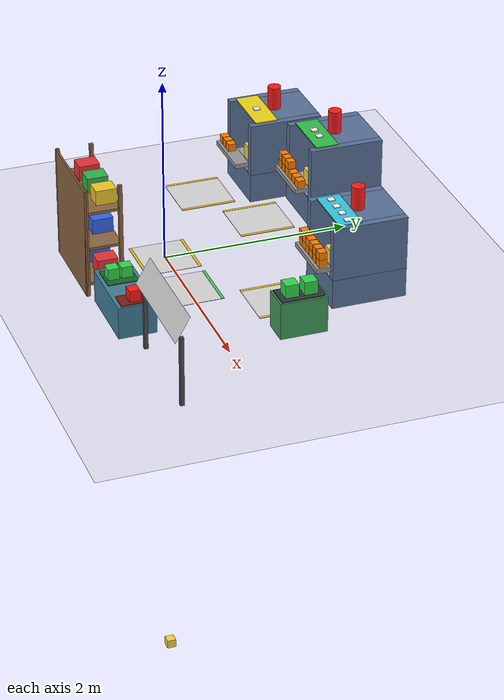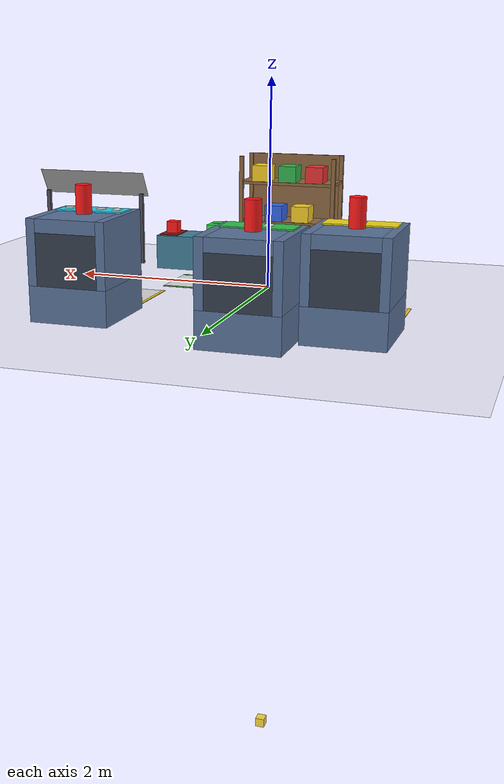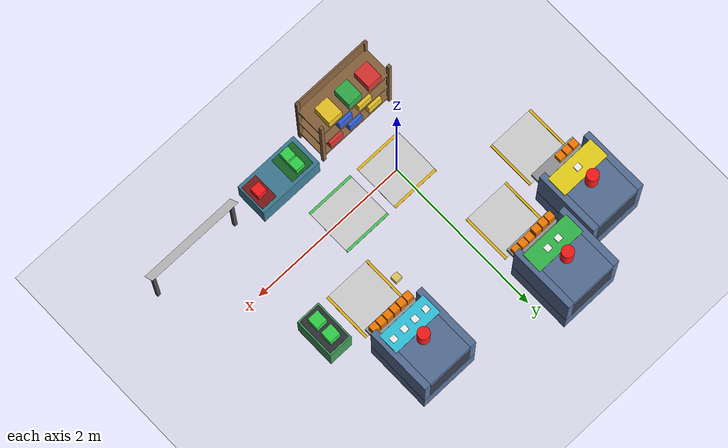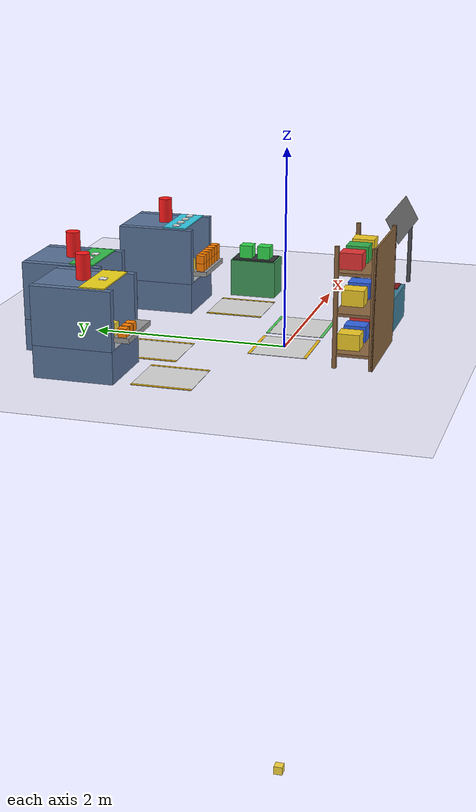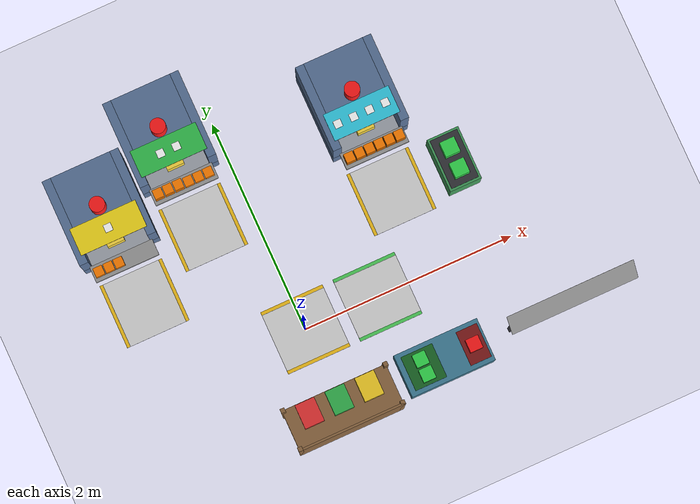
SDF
<sdf version="1.6">
 <world name="factory">
  <include><uri>model://sun</uri></include>
  <include><uri>model://ground_plane</uri></include>
  <model name="store">
   <static>true</static>
   <pose>0.0 0.0 0 0 0 3.141593</pose>
   <link name="base">
    <visual name="pad">
     <pose>0 0 0.002 0 0 0</pose>
     <geometry><box><size>0.6 0.6 0.004</size></box></geometry>
     <material>
      <ambient>0.85 0.85 0.85 1</ambient>
      <diffuse>0.85 0.85 0.85 1</diffuse>
      <specular>0.1 0.1 0.1 1</specular>
     </material>
    </visual>
    <visual name="pad_edge_l">
     <pose>0 0.285 0.003 0 0 0</pose>
     <geometry><box><size>0.6 0.03 0.006</size></box></geometry>
     <material>
      <ambient>0.95 0.75 0.1 1</ambient>
      <diffuse>0.95 0.75 0.1 1</diffuse>
      <specular>0.1 0.1 0.1 1</specular>
     </material>
    </visual>
    <visual name="pad_edge_r">
     <pose>0 -0.285 0.003 0 0 0</pose>
     <geometry><box><size>0.6 0.03 0.006</size></box></geometry>
     <material>
      <ambient>0.95 0.75 0.1 1</ambient>
      <diffuse>0.95 0.75 0.1 1</diffuse>
      <specular>0.1 0.1 0.1 1</specular>
     </material>
    </visual>
    <visual name="post0">
     <pose>-0.48 0.62 0.6 0 0 0</pose>
     <geometry><box><size>0.04 0.04 1.2</size></box></geometry>
     <material>
      <ambient>0.55 0.4 0.25 1</ambient>
      <diffuse>0.55 0.4 0.25 1</diffuse>
      <specular>0.1 0.1 0.1 1</specular>
     </material>
    </visual>
    <collision name="post0">
     <pose>-0.48 0.62 0.6 0 0 0</pose>
     <geometry><box><size>0.04 0.04 1.2</size></box></geometry>
    </collision>
    <visual name="post1">
     <pose>0.48 0.62 0.6 0 0 0</pose>
     <geometry><box><size>0.04 0.04 1.2</size></box></geometry>
     <material>
      <ambient>0.55 0.4 0.25 1</ambient>
      <diffuse>0.55 0.4 0.25 1</diffuse>
      <specular>0.1 0.1 0.1 1</specular>
     </material>
    </visual>
    <collision name="post1">
     <pose>0.48 0.62 0.6 0 0 0</pose>
     <geometry><box><size>0.04 0.04 1.2</size></box></geometry>
    </collision>
    <visual name="post2">
     <pose>-0.48 0.9800000000000001 0.6 0 0 0</pose>
     <geometry><box><size>0.04 0.04 1.2</size></box></geometry>
     <material>
      <ambient>0.55 0.4 0.25 1</ambient>
      <diffuse>0.55 0.4 0.25 1</diffuse>
      <specular>0.1 0.1 0.1 1</specular>
     </material>
    </visual>
    <collision name="post2">
     <pose>-0.48 0.9800000000000001 0.6 0 0 0</pose>
     <geometry><box><size>0.04 0.04 1.2</size></box></geometry>
    </collision>
    <visual name="post3">
     <pose>0.48 0.9800000000000001 0.6 0 0 0</pose>
     <geometry><box><size>0.04 0.04 1.2</size></box></geometry>
     <material>
      <ambient>0.55 0.4 0.25 1</ambient>
      <diffuse>0.55 0.4 0.25 1</diffuse>
      <specular>0.1 0.1 0.1 1</specular>
     </material>
    </visual>
    <collision name="post3">
     <pose>0.48 0.9800000000000001 0.6 0 0 0</pose>
     <geometry><box><size>0.04 0.04 1.2</size></box></geometry>
    </collision>
    <visual name="back">
     <pose>0 0.99 0.6 0 0 0</pose>
     <geometry><box><size>1.0 0.02 1.2</size></box></geometry>
     <material>
      <ambient>0.55 0.4 0.25 1</ambient>
      <diffuse>0.55 0.4 0.25 1</diffuse>
      <specular>0.1 0.1 0.1 1</specular>
     </material>
    </visual>
    <collision name="back">
     <pose>0 0.99 0.6 0 0 0</pose>
     <geometry><box><size>1.0 0.02 1.2</size></box></geometry>
    </collision>
    <visual name="board0">
     <pose>0 0.8 0.135 0 0 0</pose>
     <geometry><box><size>0.98 0.38 0.03</size></box></geometry>
     <material>
      <ambient>0.55 0.4 0.25 1</ambient>
      <diffuse>0.55 0.4 0.25 1</diffuse>
      <specular>0.1 0.1 0.1 1</specular>
     </material>
    </visual>
    <collision name="board0">
     <pose>0 0.8 0.135 0 0 0</pose>
     <geometry><box><size>0.98 0.38 0.03</size></box></geometry>
    </collision>
    <visual name="board1">
     <pose>0 0.8 0.535 0 0 0</pose>
     <geometry><box><size>0.98 0.38 0.03</size></box></geometry>
     <material>
      <ambient>0.55 0.4 0.25 1</ambient>
      <diffuse>0.55 0.4 0.25 1</diffuse>
      <specular>0.1 0.1 0.1 1</specular>
     </material>
    </visual>
    <collision name="board1">
     <pose>0 0.8 0.535 0 0 0</pose>
     <geometry><box><size>0.98 0.38 0.03</size></box></geometry>
    </collision>
    <visual name="board2">
     <pose>0 0.8 0.9349999999999999 0 0 0</pose>
     <geometry><box><size>0.98 0.38 0.03</size></box></geometry>
     <material>
      <ambient>0.55 0.4 0.25 1</ambient>
      <diffuse>0.55 0.4 0.25 1</diffuse>
      <specular>0.1 0.1 0.1 1</specular>
     </material>
    </visual>
    <collision name="board2">
     <pose>0 0.8 0.9349999999999999 0 0 0</pose>
     <geometry><box><size>0.98 0.38 0.03</size></box></geometry>
    </collision>
    <visual name="crate0_0">
     <pose>-0.28 0.73 0.22999999999999998 0 0 0</pose>
     <geometry><box><size>0.18 0.22 0.16</size></box></geometry>
     <material>
      <ambient>0.9 0.2 0.2 1</ambient>
      <diffuse>0.9 0.2 0.2 1</diffuse>
      <specular>0.1 0.1 0.1 1</specular>
     </material>
    </visual>
    <collision name="crate0_0">
     <pose>-0.28 0.73 0.22999999999999998 0 0 0</pose>
     <geometry><box><size>0.18 0.22 0.16</size></box></geometry>
    </collision>
    <visual name="crate0_1">
     <pose>0.0 0.73 0.22999999999999998 0 0 0</pose>
     <geometry><box><size>0.18 0.22 0.16</size></box></geometry>
     <material>
      <ambient>0.2 0.4 0.9 1</ambient>
      <diffuse>0.2 0.4 0.9 1</diffuse>
      <specular>0.1 0.1 0.1 1</specular>
     </material>
    </visual>
    <collision name="crate0_1">
     <pose>0.0 0.73 0.22999999999999998 0 0 0</pose>
     <geometry><box><size>0.18 0.22 0.16</size></box></geometry>
    </collision>
    <visual name="crate0_2">
     <pose>0.28 0.73 0.22999999999999998 0 0 0</pose>
     <geometry><box><size>0.18 0.22 0.16</size></box></geometry>
     <material>
      <ambient>0.95 0.8 0.15 1</ambient>
      <diffuse>0.95 0.8 0.15 1</diffuse>
      <specular>0.1 0.1 0.1 1</specular>
     </material>
    </visual>
    <collision name="crate0_2">
     <pose>0.28 0.73 0.22999999999999998 0 0 0</pose>
     <geometry><box><size>0.18 0.22 0.16</size></box></geometry>
    </collision>
    <visual name="crate1_0">
     <pose>-0.14 0.73 0.63 0 0 0</pose>
     <geometry><box><size>0.18 0.22 0.16</size></box></geometry>
     <material>
      <ambient>0.2 0.4 0.9 1</ambient>
      <diffuse>0.2 0.4 0.9 1</diffuse>
      <specular>0.1 0.1 0.1 1</specular>
     </material>
    </visual>
    <collision name="crate1_0">
     <pose>-0.14 0.73 0.63 0 0 0</pose>
     <geometry><box><size>0.18 0.22 0.16</size></box></geometry>
    </collision>
    <visual name="crate1_1">
     <pose>0.14 0.73 0.63 0 0 0</pose>
     <geometry><box><size>0.18 0.22 0.16</size></box></geometry>
     <material>
      <ambient>0.95 0.8 0.15 1</ambient>
      <diffuse>0.95 0.8 0.15 1</diffuse>
      <specular>0.1 0.1 0.1 1</specular>
     </material>
    </visual>
    <collision name="crate1_1">
     <pose>0.14 0.73 0.63 0 0 0</pose>
     <geometry><box><size>0.18 0.22 0.16</size></box></geometry>
    </collision>
    <visual name="crate2_0">
     <pose>-0.28 0.73 1.03 0 0 0</pose>
     <geometry><box><size>0.18 0.22 0.16</size></box></geometry>
     <material>
      <ambient>0.95 0.8 0.15 1</ambient>
      <diffuse>0.95 0.8 0.15 1</diffuse>
      <specular>0.1 0.1 0.1 1</specular>
     </material>
    </visual>
    <collision name="crate2_0">
     <pose>-0.28 0.73 1.03 0 0 0</pose>
     <geometry><box><size>0.18 0.22 0.16</size></box></geometry>
    </collision>
    <visual name="crate2_1">
     <pose>0.0 0.73 1.03 0 0 0</pose>
     <geometry><box><size>0.18 0.22 0.16</size></box></geometry>
     <material>
      <ambient>0.2 0.7 0.3 1</ambient>
      <diffuse>0.2 0.7 0.3 1</diffuse>
      <specular>0.1 0.1 0.1 1</specular>
     </material>
    </visual>
    <collision name="crate2_1">
     <pose>0.0 0.73 1.03 0 0 0</pose>
     <geometry><box><size>0.18 0.22 0.16</size></box></geometry>
    </collision>
    <visual name="crate2_2">
     <pose>0.28 0.73 1.03 0 0 0</pose>
     <geometry><box><size>0.18 0.22 0.16</size></box></geometry>
     <material>
      <ambient>0.9 0.2 0.2 1</ambient>
      <diffuse>0.9 0.2 0.2 1</diffuse>
      <specular>0.1 0.1 0.1 1</specular>
     </material>
    </visual>
    <collision name="crate2_2">
     <pose>0.28 0.73 1.03 0 0 0</pose>
     <geometry><box><size>0.18 0.22 0.16</size></box></geometry>
    </collision>
   </link>
  </model>
  <model name="M1">
   <static>true</static>
   <pose>-1.2 0.8 0 0 0 1.570796</pose>
   <link name="base">
    <visual name="pad">
     <pose>0 0 0.002 0 0 0</pose>
     <geometry><box><size>0.6 0.6 0.004</size></box></geometry>
     <material>
      <ambient>0.85 0.85 0.85 1</ambient>
      <diffuse>0.85 0.85 0.85 1</diffuse>
      <specular>0.1 0.1 0.1 1</specular>
     </material>
    </visual>
    <visual name="pad_edge_l">
     <pose>0 0.285 0.003 0 0 0</pose>
     <geometry><box><size>0.6 0.03 0.006</size></box></geometry>
     <material>
      <ambient>0.95 0.75 0.1 1</ambient>
      <diffuse>0.95 0.75 0.1 1</diffuse>
      <specular>0.1 0.1 0.1 1</specular>
     </material>
    </visual>
    <visual name="pad_edge_r">
     <pose>0 -0.285 0.003 0 0 0</pose>
     <geometry><box><size>0.6 0.03 0.006</size></box></geometry>
     <material>
      <ambient>0.95 0.75 0.1 1</ambient>
      <diffuse>0.95 0.75 0.1 1</diffuse>
      <specular>0.1 0.1 0.1 1</specular>
     </material>
    </visual>
    <visual name="body_floor">
     <pose>0.85 0 0.16 0 0 0</pose>
     <geometry><box><size>0.8 0.72 0.32</size></box></geometry>
     <material>
      <ambient>0.35 0.45 0.6 1</ambient>
      <diffuse>0.35 0.45 0.6 1</diffuse>
      <specular>0.1 0.1 0.1 1</specular>
     </material>
    </visual>
    <visual name="body_wall_l">
     <pose>0.85 0.32 0.61 0 0 0</pose>
     <geometry><box><size>0.8 0.07999999999999996 0.5800000000000001</size></box></geometry>
     <material>
      <ambient>0.35 0.45 0.6 1</ambient>
      <diffuse>0.35 0.45 0.6 1</diffuse>
      <specular>0.1 0.1 0.1 1</specular>
     </material>
    </visual>
    <visual name="body_wall_r">
     <pose>0.85 -0.32 0.61 0 0 0</pose>
     <geometry><box><size>0.8 0.07999999999999996 0.5800000000000001</size></box></geometry>
     <material>
      <ambient>0.35 0.45 0.6 1</ambient>
      <diffuse>0.35 0.45 0.6 1</diffuse>
      <specular>0.1 0.1 0.1 1</specular>
     </material>
    </visual>
    <visual name="body_roof">
     <pose>1.0 0 0.8400000000000001 0 0 0</pose>
     <geometry><box><size>0.5 0.56 0.12</size></box></geometry>
     <material>
      <ambient>0.35 0.45 0.6 1</ambient>
      <diffuse>0.35 0.45 0.6 1</diffuse>
      <specular>0.1 0.1 0.1 1</specular>
     </material>
    </visual>
    <visual name="body_back">
     <pose>1.1 0 0.55 0 0 0</pose>
     <geometry><box><size>0.30000000000000004 0.56 0.46</size></box></geometry>
     <material>
      <ambient>0.2 0.24 0.3 1</ambient>
      <diffuse>0.2 0.24 0.3 1</diffuse>
      <specular>0.1 0.1 0.1 1</specular>
     </material>
    </visual>
    <visual name="bench">
     <pose>0.7 0 0.325 0 0 0</pose>
     <geometry><box><size>0.5 0.56 0.01</size></box></geometry>
     <material>
      <ambient>0.62 0.64 0.68 1</ambient>
      <diffuse>0.62 0.64 0.68 1</diffuse>
      <specular>0.1 0.1 0.1 1</specular>
     </material>
    </visual>
    <collision name="body">
     <pose>0.85 0 0.45 0 0 0</pose>
     <geometry><box><size>0.8 0.72 0.9</size></box></geometry>
    </collision>
    <visual name="id_band">
     <pose>0.6499999999999999 0 0.906 0 0 0</pose>
     <geometry><box><size>0.25 0.62 0.012</size></box></geometry>
     <material>
      <ambient>0.95 0.85 0.1 1</ambient>
      <diffuse>0.95 0.85 0.1 1</diffuse>
      <specular>0.1 0.1 0.1 1</specular>
     </material>
    </visual>
    <visual name="id_dot1">
     <pose>0.6499999999999999 0.0 0.916 0 0 0</pose>
     <geometry><box><size>0.07 0.07 0.012</size></box></geometry>
     <material><ambient>1 1 1 1</ambient><diffuse>1 1 1 1</diffuse><specular>0.1 0.1 0.1 1</specular></material>
    </visual>
    <visual name="tray">
     <pose>0.37499999999999994 0 0.425 0 0 0</pose>
     <geometry><box><size>0.15 0.6 0.05</size></box></geometry>
     <material>
      <ambient>0.6 0.6 0.6 1</ambient>
      <diffuse>0.6 0.6 0.6 1</diffuse>
      <specular>0.1 0.1 0.1 1</specular>
     </material>
    </visual>
    <collision name="tray">
     <pose>0.37499999999999994 0 0.425 0 0 0</pose>
     <geometry><box><size>0.15 0.6 0.05</size></box></geometry>
    </collision>
   </link>
   <link name="lamp">
    <pose>0.85 0 1.025 0 0 0</pose>
    <visual name="lamp">
     <geometry><cylinder><radius>0.07</radius><length>0.25</length></cylinder></geometry>
     <material>
      <ambient>1 0.1 0.1 1</ambient>
      <diffuse>1 0.1 0.1 1</diffuse>
      <specular>0.1 0.1 0.1 1</specular>
      <emissive>1 0.1 0.1 1</emissive>
     </material>
    </visual>
   </link>
   <link name="work">
    <pose>0.62 0 0.41000000000000003 0 0 0</pose>
    <visual name="work">
     <geometry><box><size>0.16 0.16 0.16</size></box></geometry>
     <material>
      <ambient>0.98 0.85 0.25 1</ambient>
      <diffuse>0.98 0.85 0.25 1</diffuse>
      <specular>0.1 0.1 0.1 1</specular>
     </material>
    </visual>
   </link>
   <link name="stock">
    <visual name="s0">
     <pose>0.37499999999999994 0.2375 0.4925 0 0 0</pose>
     <geometry><box><size>0.085 0.085 0.085</size></box></geometry>
     <material>
      <ambient>1 0.5 0 1</ambient>
      <diffuse>1 0.5 0 1</diffuse>
      <specular>0.1 0.1 0.1 1</specular>
     </material>
    </visual>
    <visual name="s1">
     <pose>0.37499999999999994 0.14250000000000002 0.4925 0 0 0</pose>
     <geometry><box><size>0.085 0.085 0.085</size></box></geometry>
     <material>
      <ambient>1 0.5 0 1</ambient>
      <diffuse>1 0.5 0 1</diffuse>
      <specular>0.1 0.1 0.1 1</specular>
     </material>
    </visual>
    <visual name="s2">
     <pose>0.37499999999999994 0.0475 0.4925 0 0 0</pose>
     <geometry><box><size>0.085 0.085 0.085</size></box></geometry>
     <material>
      <ambient>1 0.5 0 1</ambient>
      <diffuse>1 0.5 0 1</diffuse>
      <specular>0.1 0.1 0.1 1</specular>
     </material>
    </visual>
   </link>
  </model>
  <model name="M2">
   <static>true</static>
   <pose>-0.45 1.2 0 0 0 1.570796</pose>
   <link name="base">
    <visual name="pad">
     <pose>0 0 0.002 0 0 0</pose>
     <geometry><box><size>0.6 0.6 0.004</size></box></geometry>
     <material>
      <ambient>0.85 0.85 0.85 1</ambient>
      <diffuse>0.85 0.85 0.85 1</diffuse>
      <specular>0.1 0.1 0.1 1</specular>
     </material>
    </visual>
    <visual name="pad_edge_l">
     <pose>0 0.285 0.003 0 0 0</pose>
     <geometry><box><size>0.6 0.03 0.006</size></box></geometry>
     <material>
      <ambient>0.95 0.75 0.1 1</ambient>
      <diffuse>0.95 0.75 0.1 1</diffuse>
      <specular>0.1 0.1 0.1 1</specular>
     </material>
    </visual>
    <visual name="pad_edge_r">
     <pose>0 -0.285 0.003 0 0 0</pose>
     <geometry><box><size>0.6 0.03 0.006</size></box></geometry>
     <material>
      <ambient>0.95 0.75 0.1 1</ambient>
      <diffuse>0.95 0.75 0.1 1</diffuse>
      <specular>0.1 0.1 0.1 1</specular>
     </material>
    </visual>
    <visual name="body_floor">
     <pose>0.85 0 0.16 0 0 0</pose>
     <geometry><box><size>0.8 0.72 0.32</size></box></geometry>
     <material>
      <ambient>0.35 0.45 0.6 1</ambient>
      <diffuse>0.35 0.45 0.6 1</diffuse>
      <specular>0.1 0.1 0.1 1</specular>
     </material>
    </visual>
    <visual name="body_wall_l">
     <pose>0.85 0.32 0.61 0 0 0</pose>
     <geometry><box><size>0.8 0.07999999999999996 0.5800000000000001</size></box></geometry>
     <material>
      <ambient>0.35 0.45 0.6 1</ambient>
      <diffuse>0.35 0.45 0.6 1</diffuse>
      <specular>0.1 0.1 0.1 1</specular>
     </material>
    </visual>
    <visual name="body_wall_r">
     <pose>0.85 -0.32 0.61 0 0 0</pose>
     <geometry><box><size>0.8 0.07999999999999996 0.5800000000000001</size></box></geometry>
     <material>
      <ambient>0.35 0.45 0.6 1</ambient>
      <diffuse>0.35 0.45 0.6 1</diffuse>
      <specular>0.1 0.1 0.1 1</specular>
     </material>
    </visual>
    <visual name="body_roof">
     <pose>1.0 0 0.8400000000000001 0 0 0</pose>
     <geometry><box><size>0.5 0.56 0.12</size></box></geometry>
     <material>
      <ambient>0.35 0.45 0.6 1</ambient>
      <diffuse>0.35 0.45 0.6 1</diffuse>
      <specular>0.1 0.1 0.1 1</specular>
     </material>
    </visual>
    <visual name="body_back">
     <pose>1.1 0 0.55 0 0 0</pose>
     <geometry><box><size>0.30000000000000004 0.56 0.46</size></box></geometry>
     <material>
      <ambient>0.2 0.24 0.3 1</ambient>
      <diffuse>0.2 0.24 0.3 1</diffuse>
      <specular>0.1 0.1 0.1 1</specular>
     </material>
    </visual>
    <visual name="bench">
     <pose>0.7 0 0.325 0 0 0</pose>
     <geometry><box><size>0.5 0.56 0.01</size></box></geometry>
     <material>
      <ambient>0.62 0.64 0.68 1</ambient>
      <diffuse>0.62 0.64 0.68 1</diffuse>
      <specular>0.1 0.1 0.1 1</specular>
     </material>
    </visual>
    <collision name="body">
     <pose>0.85 0 0.45 0 0 0</pose>
     <geometry><box><size>0.8 0.72 0.9</size></box></geometry>
    </collision>
    <visual name="id_band">
     <pose>0.6499999999999999 0 0.906 0 0 0</pose>
     <geometry><box><size>0.25 0.62 0.012</size></box></geometry>
     <material>
      <ambient>0.2 0.75 0.3 1</ambient>
      <diffuse>0.2 0.75 0.3 1</diffuse>
      <specular>0.1 0.1 0.1 1</specular>
     </material>
    </visual>
    <visual name="id_dot1">
     <pose>0.6499999999999999 -0.075 0.916 0 0 0</pose>
     <geometry><box><size>0.07 0.07 0.012</size></box></geometry>
     <material><ambient>1 1 1 1</ambient><diffuse>1 1 1 1</diffuse><specular>0.1 0.1 0.1 1</specular></material>
    </visual>
    <visual name="id_dot2">
     <pose>0.6499999999999999 0.075 0.916 0 0 0</pose>
     <geometry><box><size>0.07 0.07 0.012</size></box></geometry>
     <material><ambient>1 1 1 1</ambient><diffuse>1 1 1 1</diffuse><specular>0.1 0.1 0.1 1</specular></material>
    </visual>
    <visual name="tray">
     <pose>0.37499999999999994 0 0.425 0 0 0</pose>
     <geometry><box><size>0.15 0.6 0.05</size></box></geometry>
     <material>
      <ambient>0.6 0.6 0.6 1</ambient>
      <diffuse>0.6 0.6 0.6 1</diffuse>
      <specular>0.1 0.1 0.1 1</specular>
     </material>
    </visual>
    <collision name="tray">
     <pose>0.37499999999999994 0 0.425 0 0 0</pose>
     <geometry><box><size>0.15 0.6 0.05</size></box></geometry>
    </collision>
   </link>
   <link name="lamp">
    <pose>0.85 0 1.025 0 0 0</pose>
    <visual name="lamp">
     <geometry><cylinder><radius>0.07</radius><length>0.25</length></cylinder></geometry>
     <material>
      <ambient>1 0.1 0.1 1</ambient>
      <diffuse>1 0.1 0.1 1</diffuse>
      <specular>0.1 0.1 0.1 1</specular>
      <emissive>1 0.1 0.1 1</emissive>
     </material>
    </visual>
   </link>
   <link name="work">
    <pose>0.62 0 0.41000000000000003 0 0 0</pose>
    <visual name="work">
     <geometry><box><size>0.16 0.16 0.16</size></box></geometry>
     <material>
      <ambient>0.98 0.85 0.25 1</ambient>
      <diffuse>0.98 0.85 0.25 1</diffuse>
      <specular>0.1 0.1 0.1 1</specular>
     </material>
    </visual>
   </link>
   <link name="stock">
    <visual name="s0">
     <pose>0.37499999999999994 0.2375 0.4925 0 0 0</pose>
     <geometry><box><size>0.085 0.085 0.085</size></box></geometry>
     <material>
      <ambient>1 0.5 0 1</ambient>
      <diffuse>1 0.5 0 1</diffuse>
      <specular>0.1 0.1 0.1 1</specular>
     </material>
    </visual>
    <visual name="s1">
     <pose>0.37499999999999994 0.14250000000000002 0.4925 0 0 0</pose>
     <geometry><box><size>0.085 0.085 0.085</size></box></geometry>
     <material>
      <ambient>1 0.5 0 1</ambient>
      <diffuse>1 0.5 0 1</diffuse>
      <specular>0.1 0.1 0.1 1</specular>
     </material>
    </visual>
    <visual name="s2">
     <pose>0.37499999999999994 0.0475 0.4925 0 0 0</pose>
     <geometry><box><size>0.085 0.085 0.085</size></box></geometry>
     <material>
      <ambient>1 0.5 0 1</ambient>
      <diffuse>1 0.5 0 1</diffuse>
      <specular>0.1 0.1 0.1 1</specular>
     </material>
    </visual>
    <visual name="s3">
     <pose>0.37499999999999994 -0.0475 0.4925 0 0 0</pose>
     <geometry><box><size>0.085 0.085 0.085</size></box></geometry>
     <material>
      <ambient>1 0.5 0 1</ambient>
      <diffuse>1 0.5 0 1</diffuse>
      <specular>0.1 0.1 0.1 1</specular>
     </material>
    </visual>
    <visual name="s4">
     <pose>0.37499999999999994 -0.14250000000000002 0.4925 0 0 0</pose>
     <geometry><box><size>0.085 0.085 0.085</size></box></geometry>
     <material>
      <ambient>1 0.5 0 1</ambient>
      <diffuse>1 0.5 0 1</diffuse>
      <specular>0.1 0.1 0.1 1</specular>
     </material>
    </visual>
    <visual name="s5">
     <pose>0.37499999999999994 -0.2375 0.4925 0 0 0</pose>
     <geometry><box><size>0.085 0.085 0.085</size></box></geometry>
     <material>
      <ambient>1 0.5 0 1</ambient>
      <diffuse>1 0.5 0 1</diffuse>
      <specular>0.1 0.1 0.1 1</specular>
     </material>
    </visual>
    <visual name="s6">
     <pose>0.37499999999999994 0.2375 0.5775 0 0 0</pose>
     <geometry><box><size>0.085 0.085 0.085</size></box></geometry>
     <material>
      <ambient>1 0.5 0 1</ambient>
      <diffuse>1 0.5 0 1</diffuse>
      <specular>0.1 0.1 0.1 1</specular>
     </material>
    </visual>
    <visual name="s7">
     <pose>0.37499999999999994 0.14250000000000002 0.5775 0 0 0</pose>
     <geometry><box><size>0.085 0.085 0.085</size></box></geometry>
     <material>
      <ambient>1 0.5 0 1</ambient>
      <diffuse>1 0.5 0 1</diffuse>
      <specular>0.1 0.1 0.1 1</specular>
     </material>
    </visual>
    <visual name="s8">
     <pose>0.37499999999999994 0.0475 0.5775 0 0 0</pose>
     <geometry><box><size>0.085 0.085 0.085</size></box></geometry>
     <material>
      <ambient>1 0.5 0 1</ambient>
      <diffuse>1 0.5 0 1</diffuse>
      <specular>0.1 0.1 0.1 1</specular>
     </material>
    </visual>
   </link>
  </model>
  <model name="M4">
   <static>true</static>
   <pose>1.2 0.8 0 0 0 1.570796</pose>
   <link name="base">
    <visual name="pad">
     <pose>0 0 0.002 0 0 0</pose>
     <geometry><box><size>0.6 0.6 0.004</size></box></geometry>
     <material>
      <ambient>0.85 0.85 0.85 1</ambient>
      <diffuse>0.85 0.85 0.85 1</diffuse>
      <specular>0.1 0.1 0.1 1</specular>
     </material>
    </visual>
    <visual name="pad_edge_l">
     <pose>0 0.285 0.003 0 0 0</pose>
     <geometry><box><size>0.6 0.03 0.006</size></box></geometry>
     <material>
      <ambient>0.95 0.75 0.1 1</ambient>
      <diffuse>0.95 0.75 0.1 1</diffuse>
      <specular>0.1 0.1 0.1 1</specular>
     </material>
    </visual>
    <visual name="pad_edge_r">
     <pose>0 -0.285 0.003 0 0 0</pose>
     <geometry><box><size>0.6 0.03 0.006</size></box></geometry>
     <material>
      <ambient>0.95 0.75 0.1 1</ambient>
      <diffuse>0.95 0.75 0.1 1</diffuse>
      <specular>0.1 0.1 0.1 1</specular>
     </material>
    </visual>
    <visual name="body_floor">
     <pose>0.85 0 0.16 0 0 0</pose>
     <geometry><box><size>0.8 0.72 0.32</size></box></geometry>
     <material>
      <ambient>0.35 0.45 0.6 1</ambient>
      <diffuse>0.35 0.45 0.6 1</diffuse>
      <specular>0.1 0.1 0.1 1</specular>
     </material>
    </visual>
    <visual name="body_wall_l">
     <pose>0.85 0.32 0.61 0 0 0</pose>
     <geometry><box><size>0.8 0.07999999999999996 0.5800000000000001</size></box></geometry>
     <material>
      <ambient>0.35 0.45 0.6 1</ambient>
      <diffuse>0.35 0.45 0.6 1</diffuse>
      <specular>0.1 0.1 0.1 1</specular>
     </material>
    </visual>
    <visual name="body_wall_r">
     <pose>0.85 -0.32 0.61 0 0 0</pose>
     <geometry><box><size>0.8 0.07999999999999996 0.5800000000000001</size></box></geometry>
     <material>
      <ambient>0.35 0.45 0.6 1</ambient>
      <diffuse>0.35 0.45 0.6 1</diffuse>
      <specular>0.1 0.1 0.1 1</specular>
     </material>
    </visual>
    <visual name="body_roof">
     <pose>1.0 0 0.8400000000000001 0 0 0</pose>
     <geometry><box><size>0.5 0.56 0.12</size></box></geometry>
     <material>
      <ambient>0.35 0.45 0.6 1</ambient>
      <diffuse>0.35 0.45 0.6 1</diffuse>
      <specular>0.1 0.1 0.1 1</specular>
     </material>
    </visual>
    <visual name="body_back">
     <pose>1.1 0 0.55 0 0 0</pose>
     <geometry><box><size>0.30000000000000004 0.56 0.46</size></box></geometry>
     <material>
      <ambient>0.2 0.24 0.3 1</ambient>
      <diffuse>0.2 0.24 0.3 1</diffuse>
      <specular>0.1 0.1 0.1 1</specular>
     </material>
    </visual>
    <visual name="bench">
     <pose>0.7 0 0.325 0 0 0</pose>
     <geometry><box><size>0.5 0.56 0.01</size></box></geometry>
     <material>
      <ambient>0.62 0.64 0.68 1</ambient>
      <diffuse>0.62 0.64 0.68 1</diffuse>
      <specular>0.1 0.1 0.1 1</specular>
     </material>
    </visual>
    <collision name="body">
     <pose>0.85 0 0.45 0 0 0</pose>
     <geometry><box><size>0.8 0.72 0.9</size></box></geometry>
    </collision>
    <visual name="id_band">
     <pose>0.6499999999999999 0 0.906 0 0 0</pose>
     <geometry><box><size>0.25 0.62 0.012</size></box></geometry>
     <material>
      <ambient>0.2 0.8 0.9 1</ambient>
      <diffuse>0.2 0.8 0.9 1</diffuse>
      <specular>0.1 0.1 0.1 1</specular>
     </material>
    </visual>
    <visual name="id_dot1">
     <pose>0.6499999999999999 -0.22499999999999998 0.916 0 0 0</pose>
     <geometry><box><size>0.07 0.07 0.012</size></box></geometry>
     <material><ambient>1 1 1 1</ambient><diffuse>1 1 1 1</diffuse><specular>0.1 0.1 0.1 1</specular></material>
    </visual>
    <visual name="id_dot2">
     <pose>0.6499999999999999 -0.075 0.916 0 0 0</pose>
     <geometry><box><size>0.07 0.07 0.012</size></box></geometry>
     <material><ambient>1 1 1 1</ambient><diffuse>1 1 1 1</diffuse><specular>0.1 0.1 0.1 1</specular></material>
    </visual>
    <visual name="id_dot3">
     <pose>0.6499999999999999 0.075 0.916 0 0 0</pose>
     <geometry><box><size>0.07 0.07 0.012</size></box></geometry>
     <material><ambient>1 1 1 1</ambient><diffuse>1 1 1 1</diffuse><specular>0.1 0.1 0.1 1</specular></material>
    </visual>
    <visual name="id_dot4">
     <pose>0.6499999999999999 0.22499999999999998 0.916 0 0 0</pose>
     <geometry><box><size>0.07 0.07 0.012</size></box></geometry>
     <material><ambient>1 1 1 1</ambient><diffuse>1 1 1 1</diffuse><specular>0.1 0.1 0.1 1</specular></material>
    </visual>
    <visual name="tray">
     <pose>0.37499999999999994 0 0.425 0 0 0</pose>
     <geometry><box><size>0.15 0.6 0.05</size></box></geometry>
     <material>
      <ambient>0.6 0.6 0.6 1</ambient>
      <diffuse>0.6 0.6 0.6 1</diffuse>
      <specular>0.1 0.1 0.1 1</specular>
     </material>
    </visual>
    <collision name="tray">
     <pose>0.37499999999999994 0 0.425 0 0 0</pose>
     <geometry><box><size>0.15 0.6 0.05</size></box></geometry>
    </collision>
   </link>
   <link name="lamp">
    <pose>0.85 0 1.025 0 0 0</pose>
    <visual name="lamp">
     <geometry><cylinder><radius>0.07</radius><length>0.25</length></cylinder></geometry>
     <material>
      <ambient>1 0.1 0.1 1</ambient>
      <diffuse>1 0.1 0.1 1</diffuse>
      <specular>0.1 0.1 0.1 1</specular>
      <emissive>1 0.1 0.1 1</emissive>
     </material>
    </visual>
   </link>
   <link name="work">
    <pose>0.62 0 0.41000000000000003 0 0 0</pose>
    <visual name="work">
     <geometry><box><size>0.16 0.16 0.16</size></box></geometry>
     <material>
      <ambient>0.98 0.85 0.25 1</ambient>
      <diffuse>0.98 0.85 0.25 1</diffuse>
      <specular>0.1 0.1 0.1 1</specular>
     </material>
    </visual>
   </link>
   <link name="stock">
    <visual name="s0">
     <pose>0.37499999999999994 0.2375 0.4925 0 0 0</pose>
     <geometry><box><size>0.085 0.085 0.085</size></box></geometry>
     <material>
      <ambient>1 0.5 0 1</ambient>
      <diffuse>1 0.5 0 1</diffuse>
      <specular>0.1 0.1 0.1 1</specular>
     </material>
    </visual>
    <visual name="s1">
     <pose>0.37499999999999994 0.14250000000000002 0.4925 0 0 0</pose>
     <geometry><box><size>0.085 0.085 0.085</size></box></geometry>
     <material>
      <ambient>1 0.5 0 1</ambient>
      <diffuse>1 0.5 0 1</diffuse>
      <specular>0.1 0.1 0.1 1</specular>
     </material>
    </visual>
    <visual name="s2">
     <pose>0.37499999999999994 0.0475 0.4925 0 0 0</pose>
     <geometry><box><size>0.085 0.085 0.085</size></box></geometry>
     <material>
      <ambient>1 0.5 0 1</ambient>
      <diffuse>1 0.5 0 1</diffuse>
      <specular>0.1 0.1 0.1 1</specular>
     </material>
    </visual>
    <visual name="s3">
     <pose>0.37499999999999994 -0.0475 0.4925 0 0 0</pose>
     <geometry><box><size>0.085 0.085 0.085</size></box></geometry>
     <material>
      <ambient>1 0.5 0 1</ambient>
      <diffuse>1 0.5 0 1</diffuse>
      <specular>0.1 0.1 0.1 1</specular>
     </material>
    </visual>
    <visual name="s4">
     <pose>0.37499999999999994 -0.14250000000000002 0.4925 0 0 0</pose>
     <geometry><box><size>0.085 0.085 0.085</size></box></geometry>
     <material>
      <ambient>1 0.5 0 1</ambient>
      <diffuse>1 0.5 0 1</diffuse>
      <specular>0.1 0.1 0.1 1</specular>
     </material>
    </visual>
    <visual name="s5">
     <pose>0.37499999999999994 -0.2375 0.4925 0 0 0</pose>
     <geometry><box><size>0.085 0.085 0.085</size></box></geometry>
     <material>
      <ambient>1 0.5 0 1</ambient>
      <diffuse>1 0.5 0 1</diffuse>
      <specular>0.1 0.1 0.1 1</specular>
     </material>
    </visual>
    <visual name="s6">
     <pose>0.37499999999999994 0.2375 0.5775 0 0 0</pose>
     <geometry><box><size>0.085 0.085 0.085</size></box></geometry>
     <material>
      <ambient>1 0.5 0 1</ambient>
      <diffuse>1 0.5 0 1</diffuse>
      <specular>0.1 0.1 0.1 1</specular>
     </material>
    </visual>
    <visual name="s7">
     <pose>0.37499999999999994 0.14250000000000002 0.5775 0 0 0</pose>
     <geometry><box><size>0.085 0.085 0.085</size></box></geometry>
     <material>
      <ambient>1 0.5 0 1</ambient>
      <diffuse>1 0.5 0 1</diffuse>
      <specular>0.1 0.1 0.1 1</specular>
     </material>
    </visual>
    <visual name="s8">
     <pose>0.37499999999999994 0.0475 0.5775 0 0 0</pose>
     <geometry><box><size>0.085 0.085 0.085</size></box></geometry>
     <material>
      <ambient>1 0.5 0 1</ambient>
      <diffuse>1 0.5 0 1</diffuse>
      <specular>0.1 0.1 0.1 1</specular>
     </material>
    </visual>
    <visual name="s9">
     <pose>0.37499999999999994 -0.0475 0.5775 0 0 0</pose>
     <geometry><box><size>0.085 0.085 0.085</size></box></geometry>
     <material>
      <ambient>1 0.5 0 1</ambient>
      <diffuse>1 0.5 0 1</diffuse>
      <specular>0.1 0.1 0.1 1</specular>
     </material>
    </visual>
    <visual name="s10">
     <pose>0.37499999999999994 -0.14250000000000002 0.5775 0 0 0</pose>
     <geometry><box><size>0.085 0.085 0.085</size></box></geometry>
     <material>
      <ambient>1 0.5 0 1</ambient>
      <diffuse>1 0.5 0 1</diffuse>
      <specular>0.1 0.1 0.1 1</specular>
     </material>
    </visual>
    <visual name="s11">
     <pose>0.37499999999999994 -0.2375 0.5775 0 0 0</pose>
     <geometry><box><size>0.085 0.085 0.085</size></box></geometry>
     <material>
      <ambient>1 0.5 0 1</ambient>
      <diffuse>1 0.5 0 1</diffuse>
      <specular>0.1 0.1 0.1 1</specular>
     </material>
    </visual>
   </link>
  </model>
  <model name="fin_table">
   <static>true</static>
   <pose>1.7999999999999998 0.8 0 0 0 0</pose>
   <link name="base">
    <visual name="table">
     <pose>0 0 0.2 0 0 0</pose>
     <geometry><box><size>0.3 0.5 0.4</size></box></geometry>
     <material>
      <ambient>0.25 0.6 0.35 1</ambient>
      <diffuse>0.25 0.6 0.35 1</diffuse>
      <specular>0.1 0.1 0.1 1</specular>
     </material>
    </visual>
    <collision name="table">
     <pose>0 0 0.2 0 0 0</pose>
     <geometry><box><size>0.3 0.5 0.4</size></box></geometry>
    </collision>
    <visual name="rim">
     <pose>0 0 0.405 0 0 0</pose>
     <geometry><box><size>0.26 0.46 0.01</size></box></geometry>
     <material>
      <ambient>0.2 0.2 0.22 1</ambient>
      <diffuse>0.2 0.2 0.22 1</diffuse>
      <specular>0.1 0.1 0.1 1</specular>
     </material>
    </visual>
   </link>
  </model>
  <model name="FIN">
   <static>true</static>
   <pose>1.7999999999999998 0.8 0 0 0 0</pose>
   <link name="stock">
    <visual name="s0">
     <pose>0.0 0.1 0.48000000000000004 0 0 0</pose>
     <geometry><box><size>0.14 0.14 0.14</size></box></geometry>
     <material>
      <ambient>0.2 0.85 0.3 1</ambient>
      <diffuse>0.2 0.85 0.3 1</diffuse>
      <specular>0.1 0.1 0.1 1</specular>
     </material>
    </visual>
    <visual name="s1">
     <pose>0.0 -0.1 0.48000000000000004 0 0 0</pose>
     <geometry><box><size>0.14 0.14 0.14</size></box></geometry>
     <material>
      <ambient>0.2 0.85 0.3 1</ambient>
      <diffuse>0.2 0.85 0.3 1</diffuse>
      <specular>0.1 0.1 0.1 1</specular>
     </material>
    </visual>
   </link>
  </model>
  <model name="flow_piece0">
   <static>true</static>
   <link name="piece">
    <visual name="piece">
     <pose>0 0 -5 0 0 0</pose>
     <geometry><box><size>0.1 0.1 0.1</size></box></geometry>
     <material>
      <ambient>0.98 0.85 0.25 1</ambient>
      <diffuse>0.98 0.85 0.25 1</diffuse>
      <specular>0.1 0.1 0.1 1</specular>
     </material>
    </visual>
   </link>
  </model>
  <model name="flow_piece1">
   <static>true</static>
   <link name="piece">
    <visual name="piece">
     <pose>0 0 -5 0 0 0</pose>
     <geometry><box><size>0.1 0.1 0.1</size></box></geometry>
     <material>
      <ambient>0.98 0.85 0.25 1</ambient>
      <diffuse>0.98 0.85 0.25 1</diffuse>
      <specular>0.1 0.1 0.1 1</specular>
     </material>
    </visual>
   </link>
  </model>
  <model name="flow_piece2">
   <static>true</static>
   <link name="piece">
    <visual name="piece">
     <pose>0 0 -5 0 0 0</pose>
     <geometry><box><size>0.1 0.1 0.1</size></box></geometry>
     <material>
      <ambient>0.98 0.85 0.25 1</ambient>
      <diffuse>0.98 0.85 0.25 1</diffuse>
      <specular>0.1 0.1 0.1 1</specular>
     </material>
    </visual>
   </link>
  </model>
  <model name="flow_piece3">
   <static>true</static>
   <link name="piece">
    <visual name="piece">
     <pose>0 0 -5 0 0 0</pose>
     <geometry><box><size>0.1 0.1 0.1</size></box></geometry>
     <material>
      <ambient>0.98 0.85 0.25 1</ambient>
      <diffuse>0.98 0.85 0.25 1</diffuse>
      <specular>0.1 0.1 0.1 1</specular>
     </material>
    </visual>
   </link>
  </model>
  <model name="flow_piece4">
   <static>true</static>
   <link name="piece">
    <visual name="piece">
     <pose>0 0 -5 0 0 0</pose>
     <geometry><box><size>0.1 0.1 0.1</size></box></geometry>
     <material>
      <ambient>0.98 0.85 0.25 1</ambient>
      <diffuse>0.98 0.85 0.25 1</diffuse>
      <specular>0.1 0.1 0.1 1</specular>
     </material>
    </visual>
   </link>
  </model>
  <model name="flow_piece5">
   <static>true</static>
   <link name="piece">
    <visual name="piece">
     <pose>0 0 -5 0 0 0</pose>
     <geometry><box><size>0.1 0.1 0.1</size></box></geometry>
     <material>
      <ambient>0.98 0.85 0.25 1</ambient>
      <diffuse>0.98 0.85 0.25 1</diffuse>
      <specular>0.1 0.1 0.1 1</specular>
     </material>
    </visual>
   </link>
  </model>
  <model name="flow_piece6">
   <static>true</static>
   <link name="piece">
    <visual name="piece">
     <pose>0 0 -5 0 0 0</pose>
     <geometry><box><size>0.1 0.1 0.1</size></box></geometry>
     <material>
      <ambient>0.98 0.85 0.25 1</ambient>
      <diffuse>0.98 0.85 0.25 1</diffuse>
      <specular>0.1 0.1 0.1 1</specular>
     </material>
    </visual>
   </link>
  </model>
  <model name="flow_piece7">
   <static>true</static>
   <link name="piece">
    <visual name="piece">
     <pose>0 0 -5 0 0 0</pose>
     <geometry><box><size>0.1 0.1 0.1</size></box></geometry>
     <material>
      <ambient>0.98 0.85 0.25 1</ambient>
      <diffuse>0.98 0.85 0.25 1</diffuse>
      <specular>0.1 0.1 0.1 1</specular>
     </material>
    </visual>
   </link>
  </model>
  <model name="dock_pad">
   <static>true</static>
   <pose>0.7 0.0 0 0 0 0</pose>
   <link name="base">
    <visual name="pad">
     <pose>0 0 0.002 0 0 0</pose>
     <geometry><box><size>0.6 0.6 0.004</size></box></geometry>
     <material>
      <ambient>0.85 0.85 0.85 1</ambient>
      <diffuse>0.85 0.85 0.85 1</diffuse>
      <specular>0.1 0.1 0.1 1</specular>
     </material>
    </visual>
    <visual name="edge_l">
     <pose>0 0.285 0.003 0 0 0</pose>
     <geometry><box><size>0.6 0.03 0.006</size></box></geometry>
     <material>
      <ambient>0.3 0.8 0.35 1</ambient>
      <diffuse>0.3 0.8 0.35 1</diffuse>
      <specular>0.1 0.1 0.1 1</specular>
     </material>
    </visual>
    <visual name="edge_r">
     <pose>0 -0.285 0.003 0 0 0</pose>
     <geometry><box><size>0.6 0.03 0.006</size></box></geometry>
     <material>
      <ambient>0.3 0.8 0.35 1</ambient>
      <diffuse>0.3 0.8 0.35 1</diffuse>
      <specular>0.1 0.1 0.1 1</specular>
     </material>
    </visual>
   </link>
  </model>
  <model name="dock_box">
   <static>true</static>
   <pose>1.0 -0.75 0 0 0 0</pose>
   <link name="base">
    <visual name="box">
     <pose>0 0 0.175 0 0 0</pose>
     <geometry><box><size>0.8 0.4 0.35</size></box></geometry>
     <material>
      <ambient>0.25 0.5 0.6 1</ambient>
      <diffuse>0.25 0.5 0.6 1</diffuse>
      <specular>0.1 0.1 0.1 1</specular>
     </material>
    </visual>
    <collision name="box">
     <pose>0 0 0.175 0 0 0</pose>
     <geometry><box><size>0.8 0.4 0.35</size></box></geometry>
    </collision>
    <visual name="rim_ship">
     <pose>-0.2 0 0.355 0 0 0</pose>
     <geometry><box><size>0.3 0.32 0.01</size></box></geometry>
     <material>
      <ambient>0.1 0.4 0.15 1</ambient>
      <diffuse>0.1 0.4 0.15 1</diffuse>
      <specular>0.1 0.1 0.1 1</specular>
     </material>
    </visual>
    <visual name="rim_scrap">
     <pose>0.28 0 0.355 0 0 0</pose>
     <geometry><box><size>0.2 0.32 0.01</size></box></geometry>
     <material>
      <ambient>0.5 0.1 0.1 1</ambient>
      <diffuse>0.5 0.1 0.1 1</diffuse>
      <specular>0.1 0.1 0.1 1</specular>
     </material>
    </visual>
   </link>
  </model>
  <model name="DOCKS">
   <static>true</static>
   <pose>0.8 -0.75 0 0 0 0</pose>
   <link name="stock">
    <visual name="s0">
     <pose>0.0 0.07 0.42 0 0 0</pose>
     <geometry><box><size>0.12 0.12 0.12</size></box></geometry>
     <material>
      <ambient>0.2 0.85 0.3 1</ambient>
      <diffuse>0.2 0.85 0.3 1</diffuse>
      <specular>0.1 0.1 0.1 1</specular>
     </material>
    </visual>
    <visual name="s1">
     <pose>0.0 -0.07 0.42 0 0 0</pose>
     <geometry><box><size>0.12 0.12 0.12</size></box></geometry>
     <material>
      <ambient>0.2 0.85 0.3 1</ambient>
      <diffuse>0.2 0.85 0.3 1</diffuse>
      <specular>0.1 0.1 0.1 1</specular>
     </material>
    </visual>
   </link>
  </model>
  <model name="DOCKX">
   <static>true</static>
   <pose>1.28 -0.75 0 0 0 0</pose>
   <link name="stock">
    <visual name="s0">
     <pose>0.0 0.0 0.42 0 0 0</pose>
     <geometry><box><size>0.12 0.12 0.12</size></box></geometry>
     <material>
      <ambient>1 0.1 0.1 1</ambient>
      <diffuse>1 0.1 0.1 1</diffuse>
      <specular>0.1 0.1 0.1 1</specular>
     </material>
    </visual>
   </link>
  </model>
  <model name="completed_banner">
   <static>true</static>
   <pose>2.1999999999999997 -0.75 0 0 0 0</pose>
   <link name="banner">
    <visual name="board">
     <pose>0 0 0.85 1.04720 0 0</pose>
     <geometry><plane><normal>0 0 1</normal><size>1.2 0.3</size></plane></geometry>
     <material>
      <script>
       <uri>file://media/materials/scripts</uri>
       <uri>file://media/materials/textures</uri>
       <name>Factory/Completed</name>
      </script>
     </material>
    </visual>
    <visual name="post_l">
     <pose>-0.5499999999999999 0 0.375 0 0 0</pose>
     <geometry><box><size>0.04 0.04 0.75</size></box></geometry>
     <material>
      <ambient>0.3 0.3 0.33 1</ambient>
      <diffuse>0.3 0.3 0.33 1</diffuse>
      <specular>0.1 0.1 0.1 1</specular>
     </material>
    </visual>
    <visual name="post_r">
     <pose>0.5499999999999999 0 0.375 0 0 0</pose>
     <geometry><box><size>0.04 0.04 0.75</size></box></geometry>
     <material>
      <ambient>0.3 0.3 0.33 1</ambient>
      <diffuse>0.3 0.3 0.33 1</diffuse>
      <specular>0.1 0.1 0.1 1</specular>
     </material>
    </visual>
   </link>
  </model>
 </world>
</sdf>
